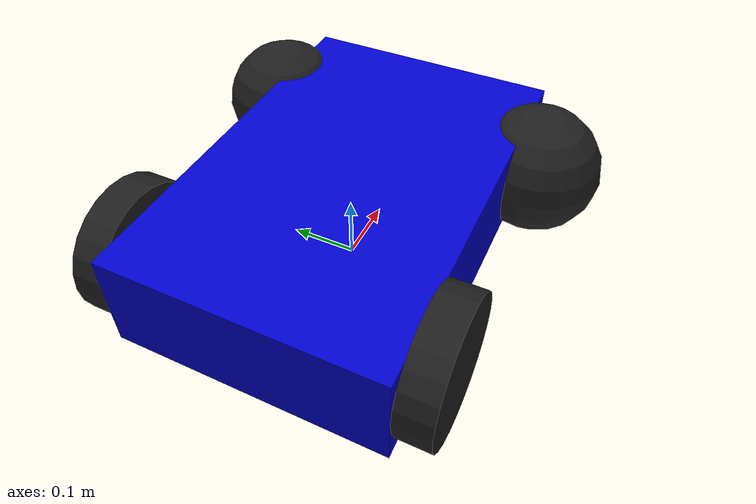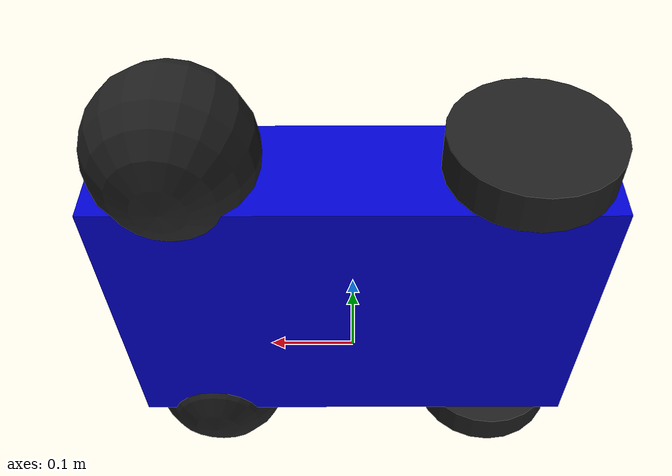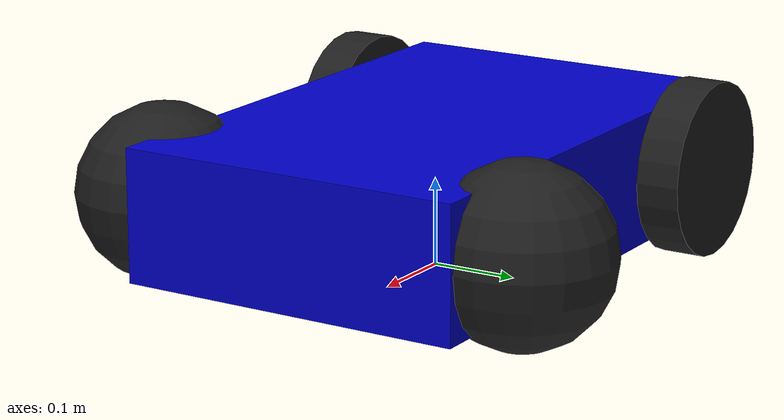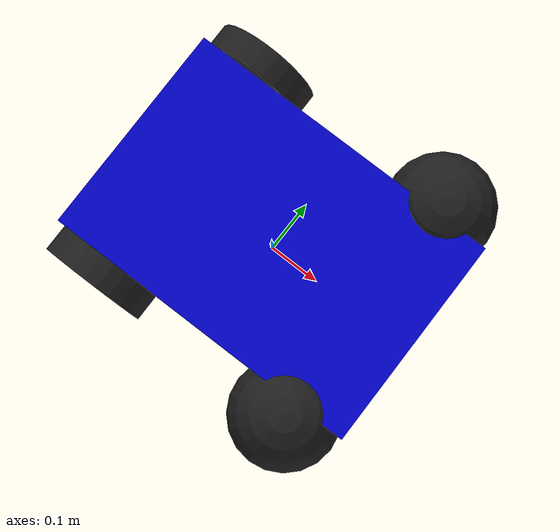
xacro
<?xml version="1.0"?>
<robot xmlns:xacro="http://www.ros.org/wiki/xacro" name="mecabot">

  <!-- Gazebo System Plugins -->
  <gazebo>
    <!-- DiffDrive plugin for movement -->
    <plugin name="ignition::gazebo::systems::DiffDrive" filename="ignition-gazebo-diff-drive-system">
      <left_joint>rear_left_wheel_joint</left_joint>
      <right_joint>rear_right_wheel_joint</right_joint>
      <wheel_separation>0.45</wheel_separation>
      <wheel_radius>0.1</wheel_radius>
    </plugin>

    <!-- MISSING PIECE: OdometryPublisher plugin -->
    <plugin name="ignition::gazebo::systems::OdometryPublisher" filename="ignition-gazebo-odometry-publisher-system">
      <odom_frame>odom</odom_frame>
      <robot_base_frame>base_footprint</robot_base_frame>
      <odom_publish_frequency>50</odom_publish_frequency>
    </plugin>

    <plugin name="ignition::gazebo::systems::ImuSensor" filename="ignition-gazebo-imu-sensor-system">
        <topic>/imu/data_raw</topic>
        <update_rate>50</update_rate>
    </plugin>
  </gazebo>

  <!-- Robot Links and Joints -->
  <link name="base_footprint"/>

  <link name="base_link">
    <inertial>
      <mass value="10.0"/>
      <origin xyz="0 0 0.05" rpy="0 0 0"/>
      <inertia ixx="0.2" ixy="0" ixz="0" iyy="0.2" iyz="0" izz="0.2"/>
    </inertial>
    <visual>
      <geometry><box size="0.6 0.4 0.15"/></geometry>
      <material name="blue"><color rgba="0.0 0.0 0.8 1.0"/></material>
    </visual>
    <collision>
      <geometry><box size="0.6 0.4 0.15"/></geometry>
    </collision>
  </link>

  <joint name="base_joint" type="fixed">
    <parent link="base_footprint"/>
    <child link="base_link"/>
    <origin xyz="0 0 0.1" rpy="0 0 0"/>
  </joint>

  <!-- Macro for the POWERED REAR wheels (with friction) -->
  <xacro:macro name="drive_wheel" params="prefix y_pos">
    <link name="${prefix}_wheel">
      <inertial><mass value="0.5"/><inertia ixx="0.001" ixy="0" ixz="0" iyy="0.001" iyz="0" izz="0.001"/></inertial>
      <visual><origin rpy="1.5707 0 0"/><geometry><cylinder radius="0.1" length="0.05"/></geometry><material name="black"/></visual>
      <collision><origin rpy="1.5707 0 0"/><geometry><cylinder radius="0.1" length="0.05"/></geometry></collision>
    </link>
    <joint name="${prefix}_wheel_joint" type="continuous">
      <parent link="base_link"/><child link="${prefix}_wheel"/><origin xyz="-0.2 ${y_pos} 0" rpy="0 0 0"/><axis xyz="0 1 0"/>
    </joint>
    <gazebo reference="${prefix}_wheel">
      <mu1>1.0</mu1><mu2>2.0</mu2><kp>1000000.0</kp><kd>100.0</kd><material>Gazebo/Black</material>
    </gazebo>
  </xacro:macro>

  <!-- Macro for the FRICTIONLESS FRONT caster wheels -->
  <xacro:macro name="caster_wheel" params="prefix y_pos">
    <link name="${prefix}_wheel">
      <inertial><mass value="0.1"/><inertia ixx="0.001" ixy="0" ixz="0" iyy="0.001" iyz="0" izz="0.001"/></inertial>
      <visual><geometry><sphere radius="0.1"/></geometry><material name="black"/></visual>
      <collision><geometry><sphere radius="0.1"/></geometry></collision>
    </link>
    <joint name="${prefix}_wheel_joint" type="fixed"> <!-- Note: Joint is now 'fixed' -->
      <parent link="base_link"/><child link="${prefix}_wheel"/><origin xyz="0.2 ${y_pos} 0" rpy="0 0 0"/>
    </joint>
    <gazebo reference="${prefix}_wheel">
      <mu1>0.0</mu1><mu2>0.0</mu2><material>Gazebo/Black</material>
    </gazebo>
  </xacro:macro>

  <!-- Create the wheels using the appropriate macros -->
  <drive_wheel prefix="rear_left"  y_pos="0.225"/>
  <drive_wheel prefix="rear_right" y_pos="-0.225"/>
  <caster_wheel prefix="front_left"  y_pos="0.225"/>
  <caster_wheel prefix="front_right" y_pos="-0.225"/>

</robot>
